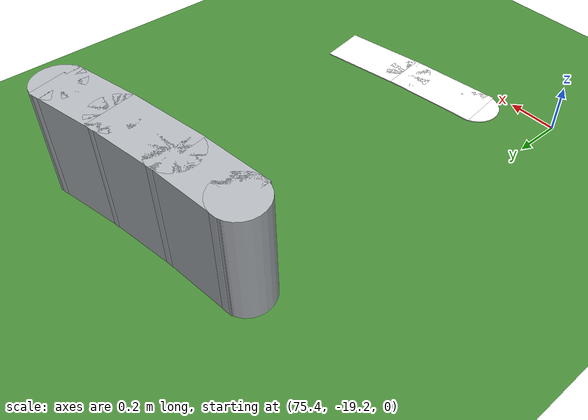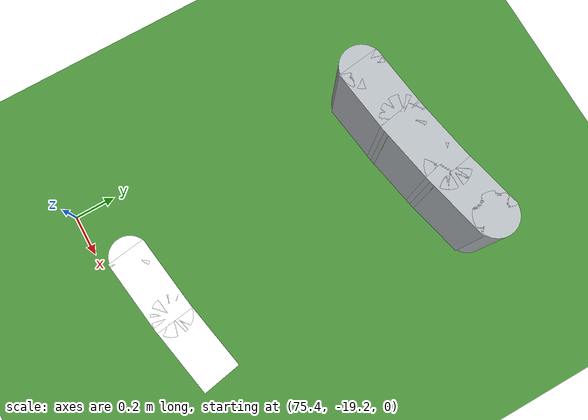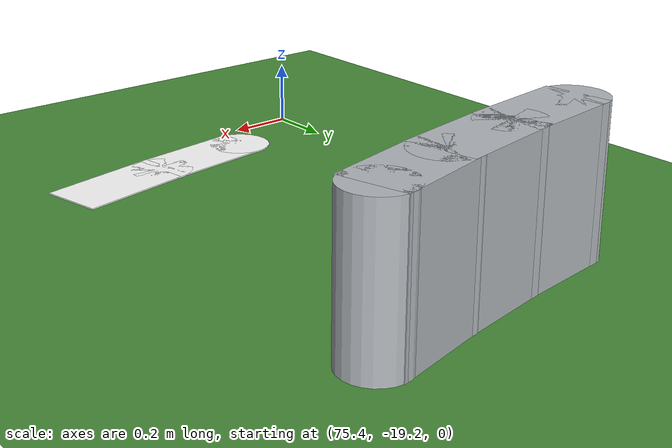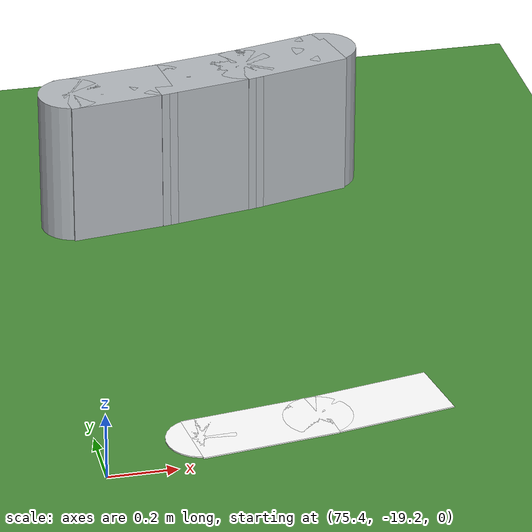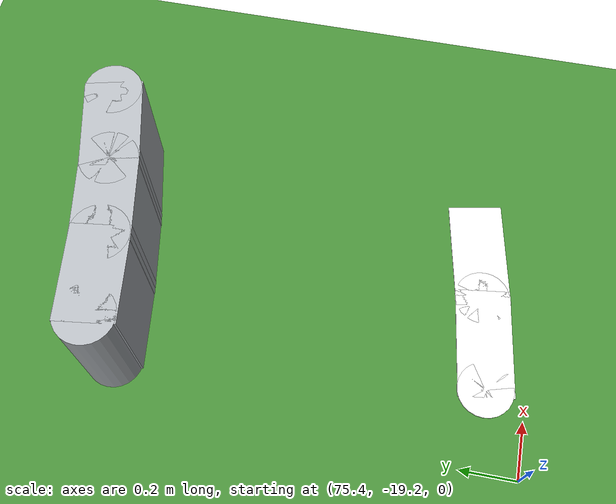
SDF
<sdf version="1.6">
 <world name="sem_silesia_ring_2026">
  <model name="ground_plane">
   <static>true</static>
   <link name="link">
    <collision name="collision">
     <geometry><plane><normal>0 0 1</normal><size>600 600</size></plane></geometry>
     <surface><friction><ode><mu>0.6</mu><mu2>0.6</mu2></ode></friction></surface>
    </collision>
    <visual name="visual">
     <geometry><plane><normal>0 0 1</normal><size>600 600</size></plane></geometry>
     <material><ambient>0.28 0.55 0.22 1</ambient><diffuse>0.28 0.55 0.22 1</diffuse></material>
    </visual>
   </link>
  </model>
  <model name="wl_Ri_jnt2">
   <static>true</static>
   <pose>75.6899 -19.0638 0.0050 0 0 0</pose>
   <link name="link">
    <visual name="v">
     <geometry><cylinder><radius>0.1000</radius><length>0.0040</length></cylinder></geometry>
     <material><ambient>1 1 1 1</ambient><diffuse>1 1 1 1</diffuse></material>
    </visual>
    <collision name="c">
     <geometry><cylinder><radius>0.1000</radius><length>0.0040</length></cylinder></geometry>
     <surface><friction><ode><mu>0.9</mu><mu2>0.9</mu2></ode></friction></surface>
    </collision>
   </link>
  </model>
  <model name="wl_Ri_s2">
   <static>true</static>
   <pose>75.8615 -19.0435 0.0050 0 0 0.1309</pose>
   <link name="link">
    <visual name="v">
     <geometry><box><size>0.4008 0.2000 0.0040</size></box></geometry>
     <material><ambient>1 1 1 1</ambient><diffuse>1 1 1 1</diffuse></material>
    </visual>
    <collision name="c">
     <geometry><box><size>0.4008 0.2000 0.0040</size></box></geometry>
     <surface><friction><ode><mu>0.9</mu><mu2>0.9</mu2></ode></friction></surface>
    </collision>
   </link>
  </model>
  <model name="wl_Ri_jnt3">
   <static>true</static>
   <pose>76.0325 -19.0187 0.0050 0 0 0</pose>
   <link name="link">
    <visual name="v">
     <geometry><cylinder><radius>0.1000</radius><length>0.0040</length></cylinder></geometry>
     <material><ambient>1 1 1 1</ambient><diffuse>1 1 1 1</diffuse></material>
    </visual>
    <collision name="c">
     <geometry><cylinder><radius>0.1000</radius><length>0.0040</length></cylinder></geometry>
     <surface><friction><ode><mu>0.9</mu><mu2>0.9</mu2></ode></friction></surface>
    </collision>
   </link>
  </model>
  <model name="wl_Ri_s3">
   <static>true</static>
   <pose>76.2028 -18.9895 0.0050 0 0 0.1833</pose>
   <link name="link">
    <visual name="v">
     <geometry><box><size>0.4008 0.2000 0.0040</size></box></geometry>
     <material><ambient>1 1 1 1</ambient><diffuse>1 1 1 1</diffuse></material>
    </visual>
    <collision name="c">
     <geometry><box><size>0.4008 0.2000 0.0040</size></box></geometry>
     <surface><friction><ode><mu>0.9</mu><mu2>0.9</mu2></ode></friction></surface>
    </collision>
   </link>
  </model>
  <model name="arm_Ri_jnt2">
   <static>true</static>
   <pose>75.5540 -17.7710 0.2250 0 0 0</pose>
   <link name="link">
    <visual name="v">
     <geometry><cylinder><radius>0.1000</radius><length>0.4500</length></cylinder></geometry>
     <material><ambient>0.70 0.72 0.74 1</ambient><diffuse>0.70 0.72 0.74 1</diffuse></material>
    </visual>
    <collision name="c">
     <geometry><cylinder><radius>0.1000</radius><length>0.4500</length></cylinder></geometry>
     <surface><friction><ode><mu>0.9</mu><mu2>0.9</mu2></ode></friction></surface>
    </collision>
   </link>
  </model>
  <model name="arm_Ri_s2">
   <static>true</static>
   <pose>75.6918 -17.7547 0.2250 0 0 0.1309</pose>
   <link name="link">
    <visual name="v">
     <geometry><box><size>0.3327 0.2000 0.4500</size></box></geometry>
     <material><ambient>0.70 0.72 0.74 1</ambient><diffuse>0.70 0.72 0.74 1</diffuse></material>
    </visual>
    <collision name="c">
     <geometry><box><size>0.3327 0.2000 0.4500</size></box></geometry>
     <surface><friction><ode><mu>0.9</mu><mu2>0.9</mu2></ode></friction></surface>
    </collision>
   </link>
  </model>
  <model name="arm_Ri_jnt3">
   <static>true</static>
   <pose>75.8291 -17.7347 0.2250 0 0 0</pose>
   <link name="link">
    <visual name="v">
     <geometry><cylinder><radius>0.1000</radius><length>0.4500</length></cylinder></geometry>
     <material><ambient>0.70 0.72 0.74 1</ambient><diffuse>0.70 0.72 0.74 1</diffuse></material>
    </visual>
    <collision name="c">
     <geometry><cylinder><radius>0.1000</radius><length>0.4500</length></cylinder></geometry>
     <surface><friction><ode><mu>0.9</mu><mu2>0.9</mu2></ode></friction></surface>
    </collision>
   </link>
  </model>
  <model name="arm_Ri_s3">
   <static>true</static>
   <pose>75.9658 -17.7113 0.2250 0 0 0.1833</pose>
   <link name="link">
    <visual name="v">
     <geometry><box><size>0.3327 0.2000 0.4500</size></box></geometry>
     <material><ambient>0.70 0.72 0.74 1</ambient><diffuse>0.70 0.72 0.74 1</diffuse></material>
    </visual>
    <collision name="c">
     <geometry><box><size>0.3327 0.2000 0.4500</size></box></geometry>
     <surface><friction><ode><mu>0.9</mu><mu2>0.9</mu2></ode></friction></surface>
    </collision>
   </link>
  </model>
  <model name="arm_Ri_jnt4">
   <static>true</static>
   <pose>76.1019 -17.6842 0.2250 0 0 0</pose>
   <link name="link">
    <visual name="v">
     <geometry><cylinder><radius>0.1000</radius><length>0.4500</length></cylinder></geometry>
     <material><ambient>0.70 0.72 0.74 1</ambient><diffuse>0.70 0.72 0.74 1</diffuse></material>
    </visual>
    <collision name="c">
     <geometry><cylinder><radius>0.1000</radius><length>0.4500</length></cylinder></geometry>
     <surface><friction><ode><mu>0.9</mu><mu2>0.9</mu2></ode></friction></surface>
    </collision>
   </link>
  </model>
  <model name="arm_Ri_s4">
   <static>true</static>
   <pose>76.2373 -17.6536 0.2250 0 0 0.2356</pose>
   <link name="link">
    <visual name="v">
     <geometry><box><size>0.3327 0.2000 0.4500</size></box></geometry>
     <material><ambient>0.70 0.72 0.74 1</ambient><diffuse>0.70 0.72 0.74 1</diffuse></material>
    </visual>
    <collision name="c">
     <geometry><box><size>0.3327 0.2000 0.4500</size></box></geometry>
     <surface><friction><ode><mu>0.9</mu><mu2>0.9</mu2></ode></friction></surface>
    </collision>
   </link>
  </model>
  <model name="arm_Ri_jnt5">
   <static>true</static>
   <pose>76.3717 -17.6194 0.2250 0 0 0</pose>
   <link name="link">
    <visual name="v">
     <geometry><cylinder><radius>0.1000</radius><length>0.4500</length></cylinder></geometry>
     <material><ambient>0.70 0.72 0.74 1</ambient><diffuse>0.70 0.72 0.74 1</diffuse></material>
    </visual>
    <collision name="c">
     <geometry><cylinder><radius>0.1000</radius><length>0.4500</length></cylinder></geometry>
     <surface><friction><ode><mu>0.9</mu><mu2>0.9</mu2></ode></friction></surface>
    </collision>
   </link>
  </model>
 </world>
</sdf>
